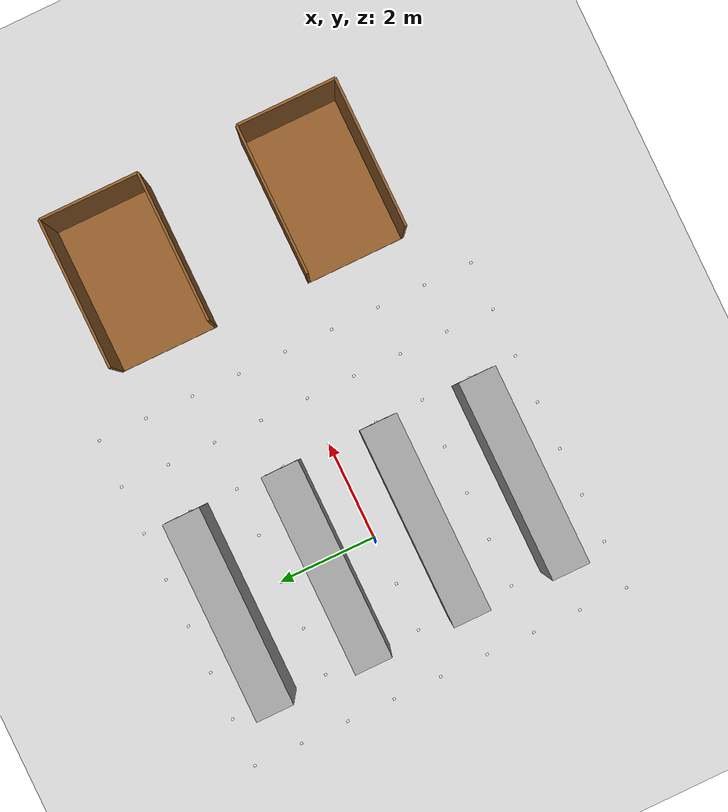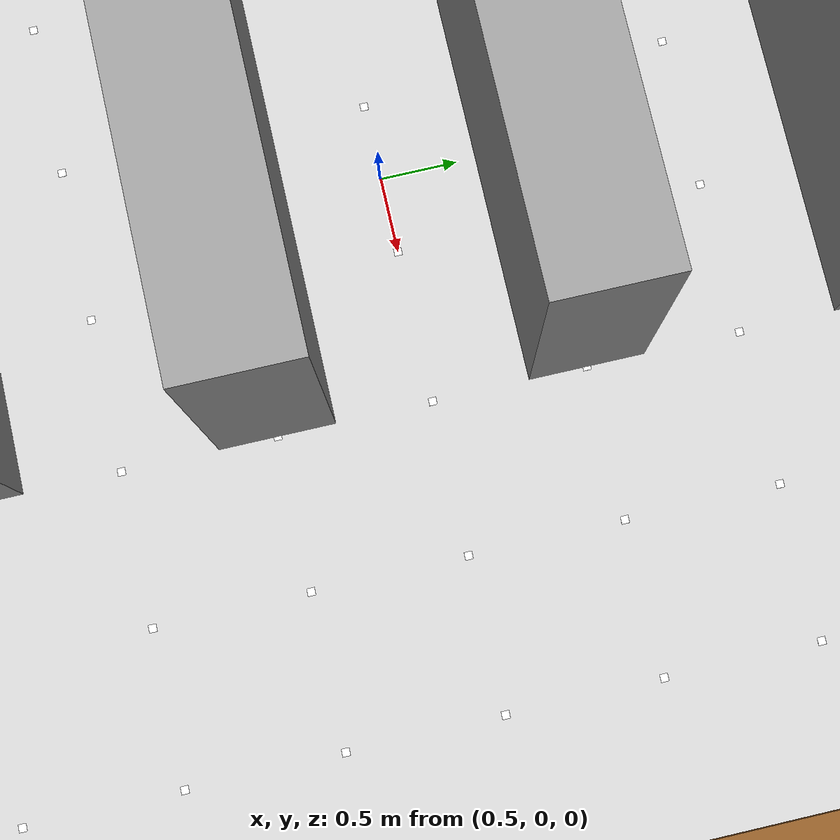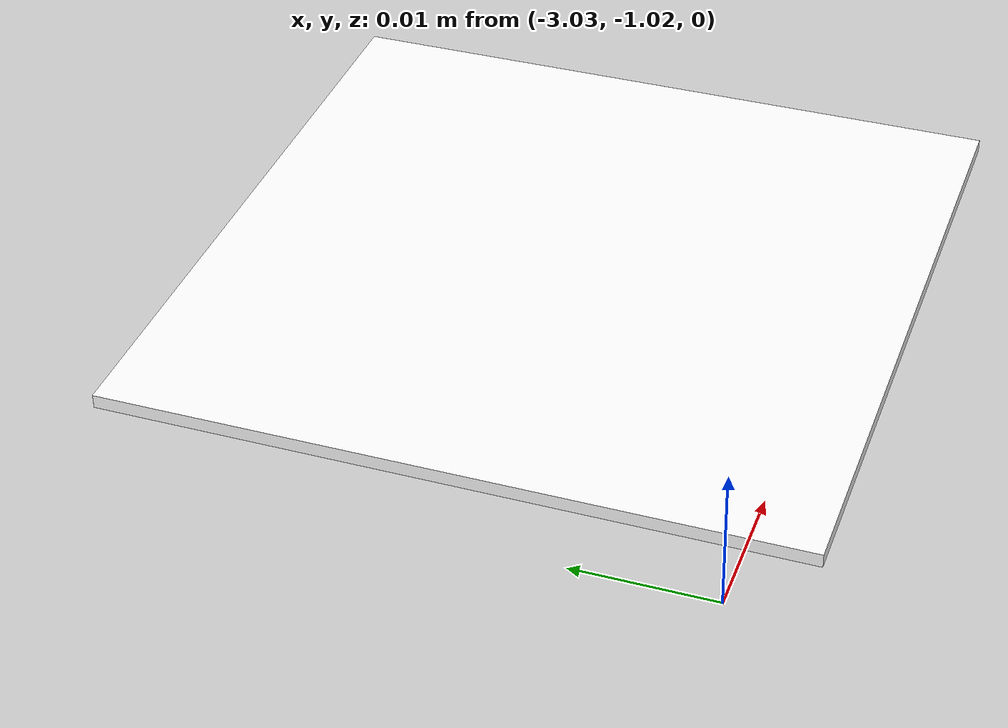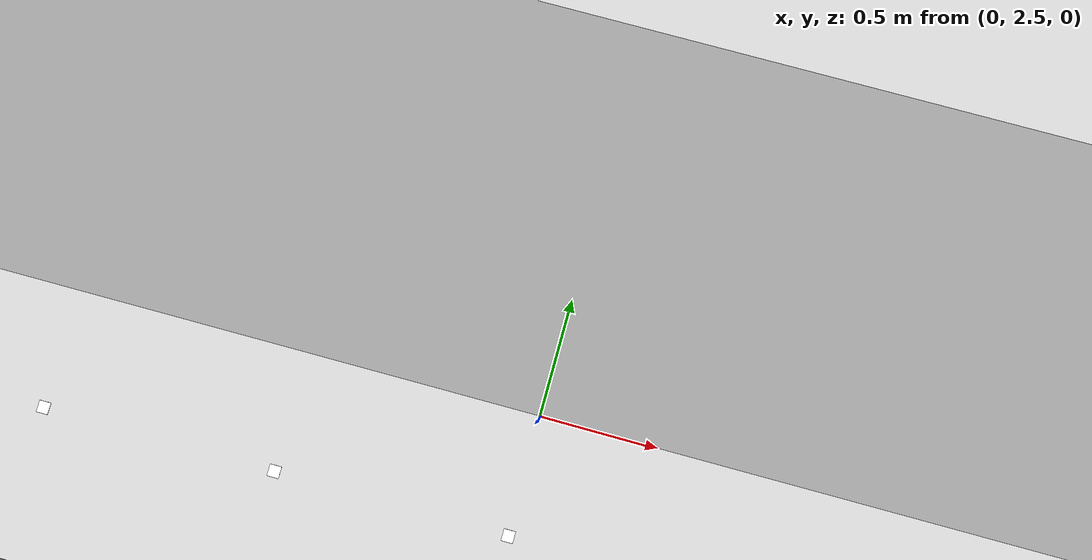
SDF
<?xml version="1.0" ?>
<sdf version="1.9">
  <world name="warehouse">
    <plugin filename="gz-sim-physics-system" name="gz::sim::systems::Physics" />
    <plugin filename="gz-sim-user-commands-system" name="gz::sim::systems::UserCommands" />
    <plugin filename="gz-sim-scene-broadcaster-system" name="gz::sim::systems::SceneBroadcaster" />
    <plugin filename="gz-sim-sensors-system" name="gz::sim::systems::Sensors">
      <render_engine>ogre2</render_engine>
    </plugin>
    <plugin filename="gz-sim-imu-system" name="gz::sim::systems::Imu" />

    <light type="directional" name="sun">
      <cast_shadows>true</cast_shadows>
      <pose>0 0 10 0 0 0</pose>
      <diffuse>0.8 0.8 0.8 1</diffuse>
      <specular>0.2 0.2 0.2 1</specular>
      <direction>-0.5 0.1 -0.9</direction>
    </light>

    <model name="ground_plane">
      <static>true</static>
      <link name="link">
        <collision name="collision">
          <geometry>
            <plane>
              <normal>0 0 1</normal>
              <size>100 100</size>
            </plane>
          </geometry>
        </collision>
        <visual name="visual">
          <geometry>
            <plane>
              <normal>0 0 1</normal>
              <size>100 100</size>
            </plane>
          </geometry>
          <material>
            <ambient>0.8 0.8 0.8 1</ambient>
            <diffuse>0.8 0.8 0.8 1</diffuse>
            <specular>0.8 0.8 0.8 1</specular>
          </material>
        </visual>
      </link>
    </model>

    <model name="obstacle_1">
      <static>true</static>
      <pose>0 -3 1 0 0 0</pose>
      <link name="link">
        <collision name="collision">
          <geometry>
            <box>
              <size>4 0.75 2</size>
            </box>
          </geometry>
        </collision>
        <visual name="visual">
          <geometry>
            <box>
              <size>4 0.75 2</size>
            </box>
          </geometry>
          <material>
            <ambient>0.6 0.6 0.6 1</ambient>
            <diffuse>0.6 0.6 0.6 1</diffuse>
            <specular>0.6 0.6 0.6 1</specular>
          </material>
        </visual>
      </link>
    </model>

    <model name="obstacle_2">
      <static>true</static>
      <pose>0 1 1 0 0 0</pose>
      <link name="link">
        <collision name="collision">
          <geometry>
            <box>
              <size>4 0.75 2</size>
            </box>
          </geometry>
        </collision>
        <visual name="visual">
          <geometry>
            <box>
              <size>4 0.75 2</size>
            </box>
          </geometry>
          <material>
            <ambient>0.6 0.6 0.6 1</ambient>
            <diffuse>0.6 0.6 0.6 1</diffuse>
            <specular>0.6 0.6 0.6 1</specular>
          </material>
        </visual>
      </link>
    </model>

    <model name="obstacle_3">
      <static>true</static>
      <pose>0 -1 1 0 0 0</pose>
      <link name="link">
        <collision name="collision">
          <geometry>
            <box>
              <size>4 0.75 2</size>
            </box>
          </geometry>
        </collision>
        <visual name="visual">
          <geometry>
            <box>
              <size>4 0.75 2</size>
            </box>
          </geometry>
          <material>
            <ambient>0.6 0.6 0.6 1</ambient>
            <diffuse>0.6 0.6 0.6 1</diffuse>
            <specular>0.6 0.6 0.6 1</specular>
          </material>
        </visual>
      </link>
    </model>

    <model name="obstacle_4">
      <static>true</static>
      <pose>0 3 1 0 0 0</pose>
      <link name="link">
        <collision name="collision">
          <geometry>
            <box>
              <size>4 0.75 2</size>
            </box>
          </geometry>
        </collision>
        <visual name="visual">
          <geometry>
            <box>
              <size>4 0.75 2</size>
            </box>
          </geometry>
          <material>
            <ambient>0.6 0.6 0.6 1</ambient>
            <diffuse>0.6 0.6 0.6 1</diffuse>
            <specular>0.6 0.6 0.6 1</specular>
          </material>
        </visual>
      </link>
    </model>
    <model name="box_1">
      <static>true</static>
      <pose>6.5 -2 0 0 0 3.14159</pose>
      <link name="link">
        <collision name="base_collision">
          <pose>0 0 0.025 0 0 0</pose>
          <geometry>
            <box>
              <size>3 2 0.05</size>
            </box>
          </geometry>
        </collision>
        <visual name="base_visual">
          <pose>0 0 0.025 0 0 0</pose>
          <geometry>
            <box>
              <size>3 2 0.05</size>
            </box>
          </geometry>
          <material>
            <ambient>0.55 0.35 0.15 1</ambient>
            <diffuse>0.55 0.35 0.15 1</diffuse>
            <specular>0.2 0.2 0.2 1</specular>
          </material>
        </visual>

        <collision name="long_side_a_collision">
          <pose>0 -1 1 0 0 0</pose>
          <geometry>
            <box>
              <size>3 0.05 2</size>
            </box>
          </geometry>
        </collision>
        <visual name="long_side_a_visual">
          <pose>0 -1 1 0 0 0</pose>
          <geometry>
            <box>
              <size>3 0.05 2</size>
            </box>
          </geometry>
          <material>
            <ambient>0.55 0.35 0.15 1</ambient>
            <diffuse>0.55 0.35 0.15 1</diffuse>
            <specular>0.2 0.2 0.2 1</specular>
          </material>
        </visual>

        <collision name="long_side_b_collision">
          <pose>0 1 1 0 0 0</pose>
          <geometry>
            <box>
              <size>3 0.05 2</size>
            </box>
          </geometry>
        </collision>
        <visual name="long_side_b_visual">
          <pose>0 1 1 0 0 0</pose>
          <geometry>
            <box>
              <size>3 0.05 2</size>
            </box>
          </geometry>
          <material>
            <ambient>0.55 0.35 0.15 1</ambient>
            <diffuse>0.55 0.35 0.15 1</diffuse>
            <specular>0.2 0.2 0.2 1</specular>
          </material>
        </visual>

        <collision name="short_side_collision">
          <pose>-1.5 0 1 0 0 0</pose>
          <geometry>
            <box>
              <size>0.05 2 2</size>
            </box>
          </geometry>
        </collision>
        <visual name="short_side_visual">
          <pose>-1.5 0 1 0 0 0</pose>
          <geometry>
            <box>
              <size>0.05 2 2</size>
            </box>
          </geometry>
          <material>
            <ambient>0.55 0.35 0.15 1</ambient>
            <diffuse>0.55 0.35 0.15 1</diffuse>
            <specular>0.2 0.2 0.2 1</specular>
          </material>
        </visual>
      </link>
    </model>

    <model name="box_2">
      <static>true</static>
      <pose>6.5 2 0 0 0 3.14159</pose>
      <link name="link">
        <collision name="base_collision">
          <pose>0 0 0.025 0 0 0</pose>
          <geometry>
            <box>
              <size>3 2 0.05</size>
            </box>
          </geometry>
        </collision>
        <visual name="base_visual">
          <pose>0 0 0.025 0 0 0</pose>
          <geometry>
            <box>
              <size>3 2 0.05</size>
            </box>
          </geometry>
          <material>
            <ambient>0.55 0.35 0.15 1</ambient>
            <diffuse>0.55 0.35 0.15 1</diffuse>
            <specular>0.2 0.2 0.2 1</specular>
          </material>
        </visual>

        <collision name="long_side_a_collision">
          <pose>0 -1 1 0 0 0</pose>
          <geometry>
            <box>
              <size>3 0.05 2</size>
            </box>
          </geometry>
        </collision>
        <visual name="long_side_a_visual">
          <pose>0 -1 1 0 0 0</pose>
          <geometry>
            <box>
              <size>3 0.05 2</size>
            </box>
          </geometry>
          <material>
            <ambient>0.55 0.35 0.15 1</ambient>
            <diffuse>0.55 0.35 0.15 1</diffuse>
            <specular>0.2 0.2 0.2 1</specular>
          </material>
        </visual>

        <collision name="long_side_b_collision">
          <pose>0 1 1 0 0 0</pose>
          <geometry>
            <box>
              <size>3 0.05 2</size>
            </box>
          </geometry>
        </collision>
        <visual name="long_side_b_visual">
          <pose>0 1 1 0 0 0</pose>
          <geometry>
            <box>
              <size>3 0.05 2</size>
            </box>
          </geometry>
          <material>
            <ambient>0.55 0.35 0.15 1</ambient>
            <diffuse>0.55 0.35 0.15 1</diffuse>
            <specular>0.2 0.2 0.2 1</specular>
          </material>
        </visual>

        <collision name="short_side_collision">
          <pose>-1.5 0 1 0 0 0</pose>
          <geometry>
            <box>
              <size>0.05 2 2</size>
            </box>
          </geometry>
        </collision>
        <visual name="short_side_visual">
          <pose>-1.5 0 1 0 0 0</pose>
          <geometry>
            <box>
              <size>0.05 2 2</size>
            </box>
          </geometry>
          <material>
            <ambient>0.55 0.35 0.15 1</ambient>
            <diffuse>0.55 0.35 0.15 1</diffuse>
            <specular>0.2 0.2 0.2 1</specular>
          </material>
        </visual>
      </link>
    </model>
    <!-- BEGIN AUTO-GENERATED APRILTAG GRID: generated by generate_apriltag_grid.py, do not edit by hand -->
    <!-- 72 floor AprilTags on the 8x9 path-planner grid -->
    <model name="floor_tag_0">
      <static>true</static>
      <pose>-3.0000 4.0000 0.0006 0 0 0.0</pose>
      <link name="link">
        <visual name="visual">
          <geometry>
            <box>
              <size>0.05 0.05 0.001</size>
            </box>
          </geometry>
          <material>
            <ambient>1 1 1 1</ambient>
            <diffuse>1 1 1 1</diffuse>
            <specular>0 0 0 1</specular>
            <pbr>
              <metal>
                <albedo_map>model://apriltag/materials/textures/tag36h11-0.png</albedo_map>
              </metal>
            </pbr>
          </material>
        </visual>
        <collision name="collision">
          <geometry>
            <box>
              <size>0.05 0.05 0.001</size>
            </box>
          </geometry>
        </collision>
      </link>
    </model>
    <model name="floor_tag_1">
      <static>true</static>
      <pose>-2.0000 4.0000 0.0006 0 0 0.0</pose>
      <link name="link">
        <visual name="visual">
          <geometry>
            <box>
              <size>0.05 0.05 0.001</size>
            </box>
          </geometry>
          <material>
            <ambient>1 1 1 1</ambient>
            <diffuse>1 1 1 1</diffuse>
            <specular>0 0 0 1</specular>
            <pbr>
              <metal>
                <albedo_map>model://apriltag/materials/textures/tag36h11-1.png</albedo_map>
              </metal>
            </pbr>
          </material>
        </visual>
        <collision name="collision">
          <geometry>
            <box>
              <size>0.05 0.05 0.001</size>
            </box>
          </geometry>
        </collision>
      </link>
    </model>
    <model name="floor_tag_2">
      <static>true</static>
      <pose>-1.0000 4.0000 0.0006 0 0 0.0</pose>
      <link name="link">
        <visual name="visual">
          <geometry>
            <box>
              <size>0.05 0.05 0.001</size>
            </box>
          </geometry>
          <material>
            <ambient>1 1 1 1</ambient>
            <diffuse>1 1 1 1</diffuse>
            <specular>0 0 0 1</specular>
            <pbr>
              <metal>
                <albedo_map>model://apriltag/materials/textures/tag36h11-2.png</albedo_map>
              </metal>
            </pbr>
          </material>
        </visual>
        <collision name="collision">
          <geometry>
            <box>
              <size>0.05 0.05 0.001</size>
            </box>
          </geometry>
        </collision>
      </link>
    </model>
    <model name="floor_tag_3">
      <static>true</static>
      <pose>0.0000 4.0000 0.0006 0 0 0.0</pose>
      <link name="link">
        <visual name="visual">
          <geometry>
            <box>
              <size>0.05 0.05 0.001</size>
            </box>
          </geometry>
          <material>
            <ambient>1 1 1 1</ambient>
            <diffuse>1 1 1 1</diffuse>
            <specular>0 0 0 1</specular>
            <pbr>
              <metal>
                <albedo_map>model://apriltag/materials/textures/tag36h11-3.png</albedo_map>
              </metal>
            </pbr>
          </material>
        </visual>
        <collision name="collision">
          <geometry>
            <box>
              <size>0.05 0.05 0.001</size>
            </box>
          </geometry>
        </collision>
      </link>
    </model>
    <model name="floor_tag_4">
      <static>true</static>
      <pose>1.0000 4.0000 0.0006 0 0 0.0</pose>
      <link name="link">
        <visual name="visual">
          <geometry>
            <box>
              <size>0.05 0.05 0.001</size>
            </box>
          </geometry>
          <material>
            <ambient>1 1 1 1</ambient>
            <diffuse>1 1 1 1</diffuse>
            <specular>0 0 0 1</specular>
            <pbr>
              <metal>
                <albedo_map>model://apriltag/materials/textures/tag36h11-4.png</albedo_map>
              </metal>
            </pbr>
          </material>
        </visual>
        <collision name="collision">
          <geometry>
            <box>
              <size>0.05 0.05 0.001</size>
            </box>
          </geometry>
        </collision>
      </link>
    </model>
    <model name="floor_tag_5">
      <static>true</static>
      <pose>2.0000 4.0000 0.0006 0 0 0.0</pose>
      <link name="link">
        <visual name="visual">
          <geometry>
            <box>
              <size>0.05 0.05 0.001</size>
            </box>
          </geometry>
          <material>
            <ambient>1 1 1 1</ambient>
            <diffuse>1 1 1 1</diffuse>
            <specular>0 0 0 1</specular>
            <pbr>
              <metal>
                <albedo_map>model://apriltag/materials/textures/tag36h11-5.png</albedo_map>
              </metal>
            </pbr>
          </material>
        </visual>
        <collision name="collision">
          <geometry>
            <box>
              <size>0.05 0.05 0.001</size>
            </box>
          </geometry>
        </collision>
      </link>
    </model>
    <model name="floor_tag_6">
      <static>true</static>
      <pose>3.0000 4.0000 0.0006 0 0 0.0</pose>
      <link name="link">
        <visual name="visual">
          <geometry>
            <box>
              <size>0.05 0.05 0.001</size>
            </box>
          </geometry>
          <material>
            <ambient>1 1 1 1</ambient>
            <diffuse>1 1 1 1</diffuse>
            <specular>0 0 0 1</specular>
            <pbr>
              <metal>
                <albedo_map>model://apriltag/materials/textures/tag36h11-6.png</albedo_map>
              </metal>
            </pbr>
          </material>
        </visual>
        <collision name="collision">
          <geometry>
            <box>
              <size>0.05 0.05 0.001</size>
            </box>
          </geometry>
        </collision>
      </link>
    </model>
    <model name="floor_tag_7">
      <static>true</static>
      <pose>4.0000 4.0000 0.0006 0 0 0.0</pose>
      <link name="link">
        <visual name="visual">
          <geometry>
            <box>
              <size>0.05 0.05 0.001</size>
            </box>
          </geometry>
          <material>
            <ambient>1 1 1 1</ambient>
            <diffuse>1 1 1 1</diffuse>
            <specular>0 0 0 1</specular>
            <pbr>
              <metal>
                <albedo_map>model://apriltag/materials/textures/tag36h11-7.png</albedo_map>
              </metal>
            </pbr>
          </material>
        </visual>
        <collision name="collision">
          <geometry>
            <box>
              <size>0.05 0.05 0.001</size>
            </box>
          </geometry>
        </collision>
      </link>
    </model>
    <model name="floor_tag_8">
      <static>true</static>
      <pose>-3.0000 3.0000 0.0006 0 0 0.0</pose>
      <link name="link">
        <visual name="visual">
          <geometry>
            <box>
              <size>0.05 0.05 0.001</size>
            </box>
          </geometry>
          <material>
            <ambient>1 1 1 1</ambient>
            <diffuse>1 1 1 1</diffuse>
            <specular>0 0 0 1</specular>
            <pbr>
              <metal>
                <albedo_map>model://apriltag/materials/textures/tag36h11-8.png</albedo_map>
              </metal>
            </pbr>
          </material>
        </visual>
        <collision name="collision">
          <geometry>
            <box>
              <size>0.05 0.05 0.001</size>
            </box>
          </geometry>
        </collision>
      </link>
    </model>
    <model name="floor_tag_9">
      <static>true</static>
      <pose>-2.0000 3.0000 0.0006 0 0 0.0</pose>
      <link name="link">
        <visual name="visual">
          <geometry>
            <box>
              <size>0.05 0.05 0.001</size>
            </box>
          </geometry>
          <material>
            <ambient>1 1 1 1</ambient>
            <diffuse>1 1 1 1</diffuse>
            <specular>0 0 0 1</specular>
            <pbr>
              <metal>
                <albedo_map>model://apriltag/materials/textures/tag36h11-9.png</albedo_map>
              </metal>
            </pbr>
          </material>
        </visual>
        <collision name="collision">
          <geometry>
            <box>
              <size>0.05 0.05 0.001</size>
            </box>
          </geometry>
        </collision>
      </link>
    </model>
    <model name="floor_tag_10">
      <static>true</static>
      <pose>-1.0000 3.0000 0.0006 0 0 0.0</pose>
      <link name="link">
        <visual name="visual">
          <geometry>
            <box>
              <size>0.05 0.05 0.001</size>
            </box>
          </geometry>
          <material>
            <ambient>1 1 1 1</ambient>
            <diffuse>1 1 1 1</diffuse>
            <specular>0 0 0 1</specular>
            <pbr>
              <metal>
                <albedo_map>model://apriltag/materials/textures/tag36h11-10.png</albedo_map>
              </metal>
            </pbr>
          </material>
        </visual>
        <collision name="collision">
          <geometry>
            <box>
              <size>0.05 0.05 0.001</size>
            </box>
          </geometry>
        </collision>
      </link>
    </model>
    <model name="floor_tag_11">
      <static>true</static>
      <pose>0.0000 3.0000 0.0006 0 0 0.0</pose>
      <link name="link">
        <visual name="visual">
          <geometry>
            <box>
              <size>0.05 0.05 0.001</size>
            </box>
          </geometry>
          <material>
            <ambient>1 1 1 1</ambient>
            <diffuse>1 1 1 1</diffuse>
            <specular>0 0 0 1</specular>
            <pbr>
              <metal>
                <albedo_map>model://apriltag/materials/textures/tag36h11-11.png</albedo_map>
              </metal>
            </pbr>
          </material>
        </visual>
        <collision name="collision">
          <geometry>
            <box>
              <size>0.05 0.05 0.001</size>
            </box>
          </geometry>
        </collision>
      </link>
    </model>
    <model name="floor_tag_12">
      <static>true</static>
      <pose>1.0000 3.0000 0.0006 0 0 0.0</pose>
      <link name="link">
        <visual name="visual">
          <geometry>
            <box>
              <size>0.05 0.05 0.001</size>
            </box>
          </geometry>
          <material>
            <ambient>1 1 1 1</ambient>
            <diffuse>1 1 1 1</diffuse>
            <specular>0 0 0 1</specular>
            <pbr>
              <metal>
                <albedo_map>model://apriltag/materials/textures/tag36h11-12.png</albedo_map>
              </metal>
            </pbr>
          </material>
        </visual>
        <collision name="collision">
          <geometry>
            <box>
              <size>0.05 0.05 0.001</size>
            </box>
          </geometry>
        </collision>
      </link>
    </model>
    <model name="floor_tag_13">
      <static>true</static>
      <pose>2.0000 3.0000 0.0006 0 0 0.0</pose>
      <link name="link">
        <visual name="visual">
          <geometry>
            <box>
              <size>0.05 0.05 0.001</size>
            </box>
          </geometry>
          <material>
            <ambient>1 1 1 1</ambient>
            <diffuse>1 1 1 1</diffuse>
            <specular>0 0 0 1</specular>
            <pbr>
              <metal>
                <albedo_map>model://apriltag/materials/textures/tag36h11-13.png</albedo_map>
              </metal>
            </pbr>
          </material>
        </visual>
        <collision name="collision">
          <geometry>
            <box>
              <size>0.05 0.05 0.001</size>
            </box>
          </geometry>
        </collision>
      </link>
    </model>
    <model name="floor_tag_14">
      <static>true</static>
      <pose>3.0000 3.0000 0.0006 0 0 0.0</pose>
      <link name="link">
        <visual name="visual">
          <geometry>
            <box>
              <size>0.05 0.05 0.001</size>
            </box>
          </geometry>
          <material>
            <ambient>1 1 1 1</ambient>
            <diffuse>1 1 1 1</diffuse>
            <specular>0 0 0 1</specular>
            <pbr>
              <metal>
                <albedo_map>model://apriltag/materials/textures/tag36h11-14.png</albedo_map>
              </metal>
            </pbr>
          </material>
        </visual>
        <collision name="collision">
          <geometry>
            <box>
              <size>0.05 0.05 0.001</size>
            </box>
          </geometry>
        </collision>
      </link>
    </model>
    <model name="floor_tag_15">
      <static>true</static>
      <pose>4.0000 3.0000 0.0006 0 0 0.0</pose>
      <link name="link">
        <visual name="visual">
          <geometry>
            <box>
              <size>0.05 0.05 0.001</size>
            </box>
          </geometry>
          <material>
            <ambient>1 1 1 1</ambient>
            <diffuse>1 1 1 1</diffuse>
            <specular>0 0 0 1</specular>
            <pbr>
              <metal>
                <albedo_map>model://apriltag/materials/textures/tag36h11-15.png</albedo_map>
              </metal>
            </pbr>
          </material>
        </visual>
        <collision name="collision">
          <geometry>
            <box>
              <size>0.05 0.05 0.001</size>
            </box>
          </geometry>
        </collision>
      </link>
    </model>
    <model name="floor_tag_16">
      <static>true</static>
      <pose>-3.0000 2.0000 0.0006 0 0 0.0</pose>
      <link name="link">
        <visual name="visual">
          <geometry>
            <box>
              <size>0.05 0.05 0.001</size>
            </box>
          </geometry>
          <material>
            <ambient>1 1 1 1</ambient>
            <diffuse>1 1 1 1</diffuse>
            <specular>0 0 0 1</specular>
            <pbr>
              <metal>
                <albedo_map>model://apriltag/materials/textures/tag36h11-16.png</albedo_map>
              </metal>
            </pbr>
          </material>
        </visual>
        <collision name="collision">
          <geometry>
            <box>
              <size>0.05 0.05 0.001</size>
            </box>
          </geometry>
        </collision>
      </link>
    </model>
    <model name="floor_tag_17">
      <static>true</static>
      <pose>-2.0000 2.0000 0.0006 0 0 0.0</pose>
      <link name="link">
        <visual name="visual">
          <geometry>
            <box>
              <size>0.05 0.05 0.001</size>
            </box>
          </geometry>
          <material>
            <ambient>1 1 1 1</ambient>
            <diffuse>1 1 1 1</diffuse>
            <specular>0 0 0 1</specular>
            <pbr>
              <metal>
                <albedo_map>model://apriltag/materials/textures/tag36h11-17.png</albedo_map>
              </metal>
            </pbr>
          </material>
        </visual>
        <collision name="collision">
          <geometry>
            <box>
              <size>0.05 0.05 0.001</size>
            </box>
          </geometry>
        </collision>
      </link>
    </model>
    <model name="floor_tag_18">
      <static>true</static>
      <pose>-1.0000 2.0000 0.0006 0 0 0.0</pose>
      <link name="link">
        <visual name="visual">
          <geometry>
            <box>
              <size>0.05 0.05 0.001</size>
            </box>
          </geometry>
          <material>
            <ambient>1 1 1 1</ambient>
            <diffuse>1 1 1 1</diffuse>
            <specular>0 0 0 1</specular>
            <pbr>
              <metal>
                <albedo_map>model://apriltag/materials/textures/tag36h11-18.png</albedo_map>
              </metal>
            </pbr>
          </material>
        </visual>
        <collision name="collision">
          <geometry>
            <box>
              <size>0.05 0.05 0.001</size>
            </box>
          </geometry>
        </collision>
      </link>
    </model>
    <model name="floor_tag_19">
      <static>true</static>
      <pose>0.0000 2.0000 0.0006 0 0 0.0</pose>
      <link name="link">
        <visual name="visual">
          <geometry>
            <box>
              <size>0.05 0.05 0.001</size>
            </box>
          </geometry>
          <material>
            <ambient>1 1 1 1</ambient>
            <diffuse>1 1 1 1</diffuse>
            <specular>0 0 0 1</specular>
            <pbr>
              <metal>
                <albedo_map>model://apriltag/materials/textures/tag36h11-19.png</albedo_map>
              </metal>
            </pbr>
          </material>
        </visual>
        <collision name="collision">
          <geometry>
            <box>
              <size>0.05 0.05 0.001</size>
            </box>
          </geometry>
        </collision>
      </link>
    </model>
    <model name="floor_tag_20">
      <static>true</static>
      <pose>1.0000 2.0000 0.0006 0 0 0.0</pose>
      <link name="link">
        <visual name="visual">
          <geometry>
            <box>
              <size>0.05 0.05 0.001</size>
            </box>
          </geometry>
          <material>
            <ambient>1 1 1 1</ambient>
            <diffuse>1 1 1 1</diffuse>
            <specular>0 0 0 1</specular>
            <pbr>
              <metal>
                <albedo_map>model://apriltag/materials/textures/tag36h11-20.png</albedo_map>
              </metal>
            </pbr>
          </material>
        </visual>
        <collision name="collision">
          <geometry>
            <box>
              <size>0.05 0.05 0.001</size>
            </box>
          </geometry>
        </collision>
      </link>
    </model>
    <model name="floor_tag_21">
      <static>true</static>
      <pose>2.0000 2.0000 0.0006 0 0 0.0</pose>
      <link name="link">
        <visual name="visual">
          <geometry>
            <box>
              <size>0.05 0.05 0.001</size>
            </box>
          </geometry>
          <material>
            <ambient>1 1 1 1</ambient>
            <diffuse>1 1 1 1</diffuse>
            <specular>0 0 0 1</specular>
            <pbr>
              <metal>
                <albedo_map>model://apriltag/materials/textures/tag36h11-21.png</albedo_map>
              </metal>
            </pbr>
          </material>
        </visual>
        <collision name="collision">
          <geometry>
            <box>
              <size>0.05 0.05 0.001</size>
            </box>
          </geometry>
        </collision>
      </link>
    </model>
    <model name="floor_tag_22">
      <static>true</static>
      <pose>3.0000 2.0000 0.0006 0 0 0.0</pose>
      <link name="link">
        <visual name="visual">
          <geometry>
            <box>
              <size>0.05 0.05 0.001</size>
            </box>
          </geometry>
          <material>
            <ambient>1 1 1 1</ambient>
            <diffuse>1 1 1 1</diffuse>
            <specular>0 0 0 1</specular>
            <pbr>
              <metal>
                <albedo_map>model://apriltag/materials/textures/tag36h11-22.png</albedo_map>
              </metal>
            </pbr>
          </material>
        </visual>
        <collision name="collision">
          <geometry>
            <box>
              <size>0.05 0.05 0.001</size>
            </box>
          </geometry>
        </collision>
      </link>
    </model>
    <model name="floor_tag_23">
      <static>true</static>
      <pose>4.0000 2.0000 0.0006 0 0 0.0</pose>
      <link name="link">
        <visual name="visual">
          <geometry>
            <box>
              <size>0.05 0.05 0.001</size>
            </box>
          </geometry>
          <material>
            <ambient>1 1 1 1</ambient>
            <diffuse>1 1 1 1</diffuse>
            <specular>0 0 0 1</specular>
            <pbr>
              <metal>
                <albedo_map>model://apriltag/materials/textures/tag36h11-23.png</albedo_map>
              </metal>
            </pbr>
          </material>
        </visual>
        <collision name="collision">
          <geometry>
            <box>
              <size>0.05 0.05 0.001</size>
            </box>
          </geometry>
        </collision>
      </link>
    </model>
    <model name="floor_tag_24">
      <static>true</static>
      <pose>-3.0000 1.0000 0.0006 0 0 0.0</pose>
      <link name="link">
        <visual name="visual">
          <geometry>
            <box>
              <size>0.05 0.05 0.001</size>
            </box>
          </geometry>
          <material>
            <ambient>1 1 1 1</ambient>
            <diffuse>1 1 1 1</diffuse>
            <specular>0 0 0 1</specular>
            <pbr>
              <metal>
                <albedo_map>model://apriltag/materials/textures/tag36h11-24.png</albedo_map>
              </metal>
            </pbr>
          </material>
        </visual>
        <collision name="collision">
          <geometry>
            <box>
              <size>0.05 0.05 0.001</size>
            </box>
          </geometry>
        </collision>
      </link>
    </model>
    <model name="floor_tag_25">
      <static>true</static>
      <pose>-2.0000 1.0000 0.0006 0 0 0.0</pose>
      <link name="link">
        <visual name="visual">
          <geometry>
            <box>
              <size>0.05 0.05 0.001</size>
            </box>
          </geometry>
          <material>
            <ambient>1 1 1 1</ambient>
            <diffuse>1 1 1 1</diffuse>
            <specular>0 0 0 1</specular>
            <pbr>
              <metal>
                <albedo_map>model://apriltag/materials/textures/tag36h11-25.png</albedo_map>
              </metal>
            </pbr>
          </material>
        </visual>
        <collision name="collision">
          <geometry>
            <box>
              <size>0.05 0.05 0.001</size>
            </box>
          </geometry>
        </collision>
      </link>
    </model>
    <model name="floor_tag_26">
      <static>true</static>
      <pose>-1.0000 1.0000 0.0006 0 0 0.0</pose>
      <link name="link">
        <visual name="visual">
          <geometry>
            <box>
              <size>0.05 0.05 0.001</size>
            </box>
          </geometry>
          <material>
            <ambient>1 1 1 1</ambient>
            <diffuse>1 1 1 1</diffuse>
            <specular>0 0 0 1</specular>
            <pbr>
              <metal>
                <albedo_map>model://apriltag/materials/textures/tag36h11-26.png</albedo_map>
              </metal>
            </pbr>
          </material>
        </visual>
        <collision name="collision">
          <geometry>
            <box>
              <size>0.05 0.05 0.001</size>
            </box>
          </geometry>
        </collision>
      </link>
    </model>
    <model name="floor_tag_27">
      <static>true</static>
      <pose>0.0000 1.0000 0.0006 0 0 0.0</pose>
      <link name="link">
        <visual name="visual">
          <geometry>
            <box>
              <size>0.05 0.05 0.001</size>
            </box>
          </geometry>
          <material>
            <ambient>1 1 1 1</ambient>
            <diffuse>1 1 1 1</diffuse>
            <specular>0 0 0 1</specular>
            <pbr>
              <metal>
                <albedo_map>model://apriltag/materials/textures/tag36h11-27.png</albedo_map>
              </metal>
            </pbr>
          </material>
        </visual>
        <collision name="collision">
          <geometry>
            <box>
              <size>0.05 0.05 0.001</size>
            </box>
          </geometry>
        </collision>
      </link>
    </model>
    <model name="floor_tag_28">
      <static>true</static>
      <pose>1.0000 1.0000 0.0006 0 0 0.0</pose>
      <link name="link">
        <visual name="visual">
          <geometry>
            <box>
              <size>0.05 0.05 0.001</size>
            </box>
          </geometry>
          <material>
            <ambient>1 1 1 1</ambient>
            <diffuse>1 1 1 1</diffuse>
            <specular>0 0 0 1</specular>
            <pbr>
              <metal>
                <albedo_map>model://apriltag/materials/textures/tag36h11-28.png</albedo_map>
              </metal>
            </pbr>
          </material>
        </visual>
        <collision name="collision">
          <geometry>
            <box>
              <size>0.05 0.05 0.001</size>
            </box>
          </geometry>
        </collision>
      </link>
    </model>
    <model name="floor_tag_29">
      <static>true</static>
      <pose>2.0000 1.0000 0.0006 0 0 0.0</pose>
      <link name="link">
        <visual name="visual">
          <geometry>
            <box>
              <size>0.05 0.05 0.001</size>
            </box>
          </geometry>
          <material>
            <ambient>1 1 1 1</ambient>
            <diffuse>1 1 1 1</diffuse>
            <specular>0 0 0 1</specular>
            <pbr>
              <metal>
                <albedo_map>model://apriltag/materials/textures/tag36h11-29.png</albedo_map>
              </metal>
            </pbr>
          </material>
        </visual>
        <collision name="collision">
          <geometry>
            <box>
              <size>0.05 0.05 0.001</size>
            </box>
          </geometry>
        </collision>
      </link>
    </model>
    <model name="floor_tag_30">
      <static>true</static>
      <pose>3.0000 1.0000 0.0006 0 0 0.0</pose>
      <link name="link">
        <visual name="visual">
          <geometry>
            <box>
              <size>0.05 0.05 0.001</size>
            </box>
          </geometry>
          <material>
            <ambient>1 1 1 1</ambient>
            <diffuse>1 1 1 1</diffuse>
            <specular>0 0 0 1</specular>
            <pbr>
              <metal>
                <albedo_map>model://apriltag/materials/textures/tag36h11-30.png</albedo_map>
              </metal>
            </pbr>
          </material>
        </visual>
        <collision name="collision">
          <geometry>
            <box>
              <size>0.05 0.05 0.001</size>
            </box>
          </geometry>
        </collision>
      </link>
    </model>
    <model name="floor_tag_31">
      <static>true</static>
      <pose>4.0000 1.0000 0.0006 0 0 0.0</pose>
      <link name="link">
        <visual name="visual">
          <geometry>
            <box>
              <size>0.05 0.05 0.001</size>
            </box>
          </geometry>
          <material>
            <ambient>1 1 1 1</ambient>
            <diffuse>1 1 1 1</diffuse>
            <specular>0 0 0 1</specular>
            <pbr>
              <metal>
                <albedo_map>model://apriltag/materials/textures/tag36h11-31.png</albedo_map>
              </metal>
            </pbr>
          </material>
        </visual>
        <collision name="collision">
          <geometry>
            <box>
              <size>0.05 0.05 0.001</size>
            </box>
          </geometry>
        </collision>
      </link>
    </model>
    <model name="floor_tag_32">
      <static>true</static>
      <pose>-3.0000 0.0000 0.0006 0 0 0.0</pose>
      <link name="link">
        <visual name="visual">
          <geometry>
            <box>
              <size>0.05 0.05 0.001</size>
            </box>
          </geometry>
          <material>
            <ambient>1 1 1 1</ambient>
            <diffuse>1 1 1 1</diffuse>
            <specular>0 0 0 1</specular>
            <pbr>
              <metal>
                <albedo_map>model://apriltag/materials/textures/tag36h11-32.png</albedo_map>
              </metal>
            </pbr>
          </material>
        </visual>
        <collision name="collision">
          <geometry>
            <box>
              <size>0.05 0.05 0.001</size>
            </box>
          </geometry>
        </collision>
      </link>
    </model>
    <model name="floor_tag_33">
      <static>true</static>
      <pose>-2.0000 0.0000 0.0006 0 0 0.0</pose>
      <link name="link">
        <visual name="visual">
          <geometry>
            <box>
              <size>0.05 0.05 0.001</size>
            </box>
          </geometry>
          <material>
            <ambient>1 1 1 1</ambient>
            <diffuse>1 1 1 1</diffuse>
            <specular>0 0 0 1</specular>
            <pbr>
              <metal>
                <albedo_map>model://apriltag/materials/textures/tag36h11-33.png</albedo_map>
              </metal>
            </pbr>
          </material>
        </visual>
        <collision name="collision">
          <geometry>
            <box>
              <size>0.05 0.05 0.001</size>
            </box>
          </geometry>
        </collision>
      </link>
    </model>
    <model name="floor_tag_34">
      <static>true</static>
      <pose>-1.0000 0.0000 0.0006 0 0 0.0</pose>
      <link name="link">
        <visual name="visual">
          <geometry>
            <box>
              <size>0.05 0.05 0.001</size>
            </box>
          </geometry>
          <material>
            <ambient>1 1 1 1</ambient>
            <diffuse>1 1 1 1</diffuse>
            <specular>0 0 0 1</specular>
            <pbr>
              <metal>
                <albedo_map>model://apriltag/materials/textures/tag36h11-34.png</albedo_map>
              </metal>
            </pbr>
          </material>
        </visual>
        <collision name="collision">
          <geometry>
            <box>
              <size>0.05 0.05 0.001</size>
            </box>
          </geometry>
        </collision>
      </link>
    </model>
    <model name="floor_tag_35">
      <static>true</static>
      <pose>0.0000 0.0000 0.0006 0 0 0.0</pose>
      <link name="link">
        <visual name="visual">
          <geometry>
            <box>
              <size>0.05 0.05 0.001</size>
            </box>
          </geometry>
          <material>
            <ambient>1 1 1 1</ambient>
            <diffuse>1 1 1 1</diffuse>
            <specular>0 0 0 1</specular>
            <pbr>
              <metal>
                <albedo_map>model://apriltag/materials/textures/tag36h11-35.png</albedo_map>
              </metal>
            </pbr>
          </material>
        </visual>
        <collision name="collision">
          <geometry>
            <box>
              <size>0.05 0.05 0.001</size>
            </box>
          </geometry>
        </collision>
      </link>
    </model>
    <model name="floor_tag_36">
      <static>true</static>
      <pose>1.0000 0.0000 0.0006 0 0 0.0</pose>
      <link name="link">
        <visual name="visual">
          <geometry>
            <box>
              <size>0.05 0.05 0.001</size>
            </box>
          </geometry>
          <material>
            <ambient>1 1 1 1</ambient>
            <diffuse>1 1 1 1</diffuse>
            <specular>0 0 0 1</specular>
            <pbr>
              <metal>
                <albedo_map>model://apriltag/materials/textures/tag36h11-36.png</albedo_map>
              </metal>
            </pbr>
          </material>
        </visual>
        <collision name="collision">
          <geometry>
            <box>
              <size>0.05 0.05 0.001</size>
            </box>
          </geometry>
        </collision>
      </link>
    </model>
    <model name="floor_tag_37">
      <static>true</static>
      <pose>2.0000 0.0000 0.0006 0 0 0.0</pose>
      <link name="link">
        <visual name="visual">
          <geometry>
            <box>
              <size>0.05 0.05 0.001</size>
            </box>
          </geometry>
          <material>
            <ambient>1 1 1 1</ambient>
            <diffuse>1 1 1 1</diffuse>
            <specular>0 0 0 1</specular>
            <pbr>
              <metal>
                <albedo_map>model://apriltag/materials/textures/tag36h11-37.png</albedo_map>
              </metal>
            </pbr>
          </material>
        </visual>
        <collision name="collision">
          <geometry>
            <box>
              <size>0.05 0.05 0.001</size>
            </box>
          </geometry>
        </collision>
      </link>
    </model>
    <model name="floor_tag_38">
      <static>true</static>
      <pose>3.0000 0.0000 0.0006 0 0 0.0</pose>
      <link name="link">
        <visual name="visual">
          <geometry>
            <box>
              <size>0.05 0.05 0.001</size>
            </box>
          </geometry>
          <material>
            <ambient>1 1 1 1</ambient>
            <diffuse>1 1 1 1</diffuse>
            <specular>0 0 0 1</specular>
            <pbr>
              <metal>
                <albedo_map>model://apriltag/materials/textures/tag36h11-38.png</albedo_map>
              </metal>
            </pbr>
          </material>
        </visual>
        <collision name="collision">
          <geometry>
            <box>
              <size>0.05 0.05 0.001</size>
            </box>
          </geometry>
        </collision>
      </link>
    </model>
    <model name="floor_tag_39">
      <static>true</static>
      <pose>4.0000 0.0000 0.0006 0 0 0.0</pose>
      <link name="link">
        <visual name="visual">
          <geometry>
            <box>
              <size>0.05 0.05 0.001</size>
            </box>
          </geometry>
          <material>
            <ambient>1 1 1 1</ambient>
            <diffuse>1 1 1 1</diffuse>
            <specular>0 0 0 1</specular>
            <pbr>
              <metal>
                <albedo_map>model://apriltag/materials/textures/tag36h11-39.png</albedo_map>
              </metal>
            </pbr>
          </material>
        </visual>
        <collision name="collision">
          <geometry>
            <box>
              <size>0.05 0.05 0.001</size>
            </box>
          </geometry>
        </collision>
      </link>
    </model>
    <model name="floor_tag_40">
      <static>true</static>
      <pose>-3.0000 -1.0000 0.0006 0 0 0.0</pose>
      <link name="link">
        <visual name="visual">
          <geometry>
            <box>
              <size>0.05 0.05 0.001</size>
            </box>
          </geometry>
          <material>
            <ambient>1 1 1 1</ambient>
            <diffuse>1 1 1 1</diffuse>
            <specular>0 0 0 1</specular>
            <pbr>
              <metal>
                <albedo_map>model://apriltag/materials/textures/tag36h11-40.png</albedo_map>
              </metal>
            </pbr>
          </material>
        </visual>
        <collision name="collision">
          <geometry>
            <box>
              <size>0.05 0.05 0.001</size>
            </box>
          </geometry>
        </collision>
      </link>
    </model>
    <model name="floor_tag_41">
      <static>true</static>
      <pose>-2.0000 -1.0000 0.0006 0 0 0.0</pose>
      <link name="link">
        <visual name="visual">
          <geometry>
            <box>
              <size>0.05 0.05 0.001</size>
            </box>
          </geometry>
          <material>
            <ambient>1 1 1 1</ambient>
            <diffuse>1 1 1 1</diffuse>
            <specular>0 0 0 1</specular>
            <pbr>
              <metal>
                <albedo_map>model://apriltag/materials/textures/tag36h11-41.png</albedo_map>
              </metal>
            </pbr>
          </material>
        </visual>
        <collision name="collision">
          <geometry>
            <box>
              <size>0.05 0.05 0.001</size>
            </box>
          </geometry>
        </collision>
      </link>
    </model>
    <model name="floor_tag_42">
      <static>true</static>
      <pose>-1.0000 -1.0000 0.0006 0 0 0.0</pose>
      <link name="link">
        <visual name="visual">
          <geometry>
            <box>
              <size>0.05 0.05 0.001</size>
            </box>
          </geometry>
          <material>
            <ambient>1 1 1 1</ambient>
            <diffuse>1 1 1 1</diffuse>
            <specular>0 0 0 1</specular>
            <pbr>
              <metal>
                <albedo_map>model://apriltag/materials/textures/tag36h11-42.png</albedo_map>
              </metal>
            </pbr>
          </material>
        </visual>
        <collision name="collision">
          <geometry>
            <box>
              <size>0.05 0.05 0.001</size>
            </box>
          </geometry>
        </collision>
      </link>
    </model>
    <model name="floor_tag_43">
      <static>true</static>
      <pose>0.0000 -1.0000 0.0006 0 0 0.0</pose>
      <link name="link">
        <visual name="visual">
          <geometry>
            <box>
              <size>0.05 0.05 0.001</size>
            </box>
          </geometry>
          <material>
            <ambient>1 1 1 1</ambient>
            <diffuse>1 1 1 1</diffuse>
            <specular>0 0 0 1</specular>
            <pbr>
              <metal>
                <albedo_map>model://apriltag/materials/textures/tag36h11-43.png</albedo_map>
              </metal>
            </pbr>
          </material>
        </visual>
        <collision name="collision">
          <geometry>
            <box>
              <size>0.05 0.05 0.001</size>
            </box>
          </geometry>
        </collision>
      </link>
    </model>
    <model name="floor_tag_44">
      <static>true</static>
      <pose>1.0000 -1.0000 0.0006 0 0 0.0</pose>
      <link name="link">
        <visual name="visual">
          <geometry>
            <box>
              <size>0.05 0.05 0.001</size>
            </box>
          </geometry>
          <material>
            <ambient>1 1 1 1</ambient>
            <diffuse>1 1 1 1</diffuse>
            <specular>0 0 0 1</specular>
            <pbr>
              <metal>
                <albedo_map>model://apriltag/materials/textures/tag36h11-44.png</albedo_map>
              </metal>
            </pbr>
          </material>
        </visual>
        <collision name="collision">
          <geometry>
            <box>
              <size>0.05 0.05 0.001</size>
            </box>
          </geometry>
        </collision>
      </link>
    </model>
    <model name="floor_tag_45">
      <static>true</static>
      <pose>2.0000 -1.0000 0.0006 0 0 0.0</pose>
      <link name="link">
        <visual name="visual">
          <geometry>
            <box>
              <size>0.05 0.05 0.001</size>
            </box>
          </geometry>
          <material>
            <ambient>1 1 1 1</ambient>
            <diffuse>1 1 1 1</diffuse>
            <specular>0 0 0 1</specular>
            <pbr>
              <metal>
                <albedo_map>model://apriltag/materials/textures/tag36h11-45.png</albedo_map>
              </metal>
            </pbr>
          </material>
        </visual>
        <collision name="collision">
          <geometry>
            <box>
              <size>0.05 0.05 0.001</size>
            </box>
          </geometry>
        </collision>
      </link>
    </model>
    <model name="floor_tag_46">
      <static>true</static>
      <pose>3.0000 -1.0000 0.0006 0 0 0.0</pose>
      <link name="link">
        <visual name="visual">
          <geometry>
            <box>
              <size>0.05 0.05 0.001</size>
            </box>
          </geometry>
          <material>
            <ambient>1 1 1 1</ambient>
            <diffuse>1 1 1 1</diffuse>
            <specular>0 0 0 1</specular>
            <pbr>
              <metal>
                <albedo_map>model://apriltag/materials/textures/tag36h11-46.png</albedo_map>
              </metal>
            </pbr>
          </material>
        </visual>
        <collision name="collision">
          <geometry>
            <box>
              <size>0.05 0.05 0.001</size>
            </box>
          </geometry>
        </collision>
      </link>
    </model>
    <model name="floor_tag_47">
      <static>true</static>
      <pose>4.0000 -1.0000 0.0006 0 0 0.0</pose>
      <link name="link">
        <visual name="visual">
          <geometry>
            <box>
              <size>0.05 0.05 0.001</size>
            </box>
          </geometry>
          <material>
            <ambient>1 1 1 1</ambient>
            <diffuse>1 1 1 1</diffuse>
            <specular>0 0 0 1</specular>
            <pbr>
              <metal>
                <albedo_map>model://apriltag/materials/textures/tag36h11-47.png</albedo_map>
              </metal>
            </pbr>
          </material>
        </visual>
        <collision name="collision">
          <geometry>
            <box>
              <size>0.05 0.05 0.001</size>
            </box>
          </geometry>
        </collision>
      </link>
    </model>
    <model name="floor_tag_48">
      <static>true</static>
      <pose>-3.0000 -2.0000 0.0006 0 0 0.0</pose>
      <link name="link">
        <visual name="visual">
          <geometry>
            <box>
              <size>0.05 0.05 0.001</size>
            </box>
          </geometry>
          <material>
            <ambient>1 1 1 1</ambient>
            <diffuse>1 1 1 1</diffuse>
            <specular>0 0 0 1</specular>
            <pbr>
              <metal>
                <albedo_map>model://apriltag/materials/textures/tag36h11-48.png</albedo_map>
              </metal>
            </pbr>
          </material>
        </visual>
        <collision name="collision">
          <geometry>
            <box>
              <size>0.05 0.05 0.001</size>
            </box>
          </geometry>
        </collision>
      </link>
    </model>
    <model name="floor_tag_49">
      <static>true</static>
      <pose>-2.0000 -2.0000 0.0006 0 0 0.0</pose>
      <link name="link">
        <visual name="visual">
          <geometry>
            <box>
              <size>0.05 0.05 0.001</size>
            </box>
          </geometry>
          <material>
            <ambient>1 1 1 1</ambient>
            <diffuse>1 1 1 1</diffuse>
            <specular>0 0 0 1</specular>
            <pbr>
              <metal>
                <albedo_map>model://apriltag/materials/textures/tag36h11-49.png</albedo_map>
              </metal>
            </pbr>
          </material>
        </visual>
        <collision name="collision">
          <geometry>
            <box>
              <size>0.05 0.05 0.001</size>
            </box>
          </geometry>
        </collision>
      </link>
    </model>
    <model name="floor_tag_50">
      <static>true</static>
      <pose>-1.0000 -2.0000 0.0006 0 0 0.0</pose>
      <link name="link">
        <visual name="visual">
          <geometry>
            <box>
              <size>0.05 0.05 0.001</size>
            </box>
          </geometry>
          <material>
            <ambient>1 1 1 1</ambient>
            <diffuse>1 1 1 1</diffuse>
            <specular>0 0 0 1</specular>
            <pbr>
              <metal>
                <albedo_map>model://apriltag/materials/textures/tag36h11-50.png</albedo_map>
              </metal>
            </pbr>
          </material>
        </visual>
        <collision name="collision">
          <geometry>
            <box>
              <size>0.05 0.05 0.001</size>
            </box>
          </geometry>
        </collision>
      </link>
    </model>
    <model name="floor_tag_51">
      <static>true</static>
      <pose>0.0000 -2.0000 0.0006 0 0 0.0</pose>
      <link name="link">
        <visual name="visual">
          <geometry>
            <box>
              <size>0.05 0.05 0.001</size>
            </box>
          </geometry>
          <material>
            <ambient>1 1 1 1</ambient>
            <diffuse>1 1 1 1</diffuse>
            <specular>0 0 0 1</specular>
            <pbr>
              <metal>
                <albedo_map>model://apriltag/materials/textures/tag36h11-51.png</albedo_map>
              </metal>
            </pbr>
          </material>
        </visual>
        <collision name="collision">
          <geometry>
            <box>
              <size>0.05 0.05 0.001</size>
            </box>
          </geometry>
        </collision>
      </link>
    </model>
    <model name="floor_tag_52">
      <static>true</static>
      <pose>1.0000 -2.0000 0.0006 0 0 0.0</pose>
      <link name="link">
        <visual name="visual">
          <geometry>
            <box>
              <size>0.05 0.05 0.001</size>
            </box>
          </geometry>
          <material>
            <ambient>1 1 1 1</ambient>
            <diffuse>1 1 1 1</diffuse>
            <specular>0 0 0 1</specular>
            <pbr>
              <metal>
                <albedo_map>model://apriltag/materials/textures/tag36h11-52.png</albedo_map>
              </metal>
            </pbr>
          </material>
        </visual>
        <collision name="collision">
          <geometry>
            <box>
              <size>0.05 0.05 0.001</size>
            </box>
          </geometry>
        </collision>
      </link>
    </model>
    <model name="floor_tag_53">
      <static>true</static>
      <pose>2.0000 -2.0000 0.0006 0 0 0.0</pose>
      <link name="link">
        <visual name="visual">
          <geometry>
            <box>
              <size>0.05 0.05 0.001</size>
            </box>
          </geometry>
          <material>
            <ambient>1 1 1 1</ambient>
            <diffuse>1 1 1 1</diffuse>
            <specular>0 0 0 1</specular>
            <pbr>
              <metal>
                <albedo_map>model://apriltag/materials/textures/tag36h11-53.png</albedo_map>
              </metal>
            </pbr>
          </material>
        </visual>
        <collision name="collision">
          <geometry>
            <box>
              <size>0.05 0.05 0.001</size>
            </box>
          </geometry>
        </collision>
      </link>
    </model>
    <model name="floor_tag_54">
      <static>true</static>
      <pose>3.0000 -2.0000 0.0006 0 0 0.0</pose>
      <link name="link">
        <visual name="visual">
          <geometry>
            <box>
              <size>0.05 0.05 0.001</size>
            </box>
          </geometry>
          <material>
            <ambient>1 1 1 1</ambient>
            <diffuse>1 1 1 1</diffuse>
            <specular>0 0 0 1</specular>
            <pbr>
              <metal>
                <albedo_map>model://apriltag/materials/textures/tag36h11-54.png</albedo_map>
              </metal>
            </pbr>
          </material>
        </visual>
        <collision name="collision">
          <geometry>
            <box>
              <size>0.05 0.05 0.001</size>
            </box>
          </geometry>
        </collision>
      </link>
    </model>
    <model name="floor_tag_55">
      <static>true</static>
      <pose>4.0000 -2.0000 0.0006 0 0 0.0</pose>
      <link name="link">
        <visual name="visual">
          <geometry>
            <box>
              <size>0.05 0.05 0.001</size>
            </box>
          </geometry>
          <material>
            <ambient>1 1 1 1</ambient>
            <diffuse>1 1 1 1</diffuse>
            <specular>0 0 0 1</specular>
            <pbr>
              <metal>
                <albedo_map>model://apriltag/materials/textures/tag36h11-55.png</albedo_map>
              </metal>
            </pbr>
          </material>
        </visual>
        <collision name="collision">
          <geometry>
            <box>
              <size>0.05 0.05 0.001</size>
            </box>
          </geometry>
        </collision>
      </link>
    </model>
    <model name="floor_tag_56">
      <static>true</static>
      <pose>-3.0000 -3.0000 0.0006 0 0 0.0</pose>
      <link name="link">
        <visual name="visual">
          <geometry>
            <box>
              <size>0.05 0.05 0.001</size>
            </box>
          </geometry>
          <material>
            <ambient>1 1 1 1</ambient>
            <diffuse>1 1 1 1</diffuse>
            <specular>0 0 0 1</specular>
            <pbr>
              <metal>
                <albedo_map>model://apriltag/materials/textures/tag36h11-56.png</albedo_map>
              </metal>
            </pbr>
          </material>
        </visual>
        <collision name="collision">
          <geometry>
            <box>
              <size>0.05 0.05 0.001</size>
            </box>
          </geometry>
        </collision>
      </link>
    </model>
    <model name="floor_tag_57">
      <static>true</static>
      <pose>-2.0000 -3.0000 0.0006 0 0 0.0</pose>
      <link name="link">
        <visual name="visual">
          <geometry>
            <box>
              <size>0.05 0.05 0.001</size>
            </box>
          </geometry>
          <material>
            <ambient>1 1 1 1</ambient>
            <diffuse>1 1 1 1</diffuse>
            <specular>0 0 0 1</specular>
            <pbr>
              <metal>
                <albedo_map>model://apriltag/materials/textures/tag36h11-57.png</albedo_map>
              </metal>
            </pbr>
          </material>
        </visual>
        <collision name="collision">
          <geometry>
            <box>
              <size>0.05 0.05 0.001</size>
            </box>
          </geometry>
        </collision>
      </link>
    </model>
    <model name="floor_tag_58">
      <static>true</static>
      <pose>-1.0000 -3.0000 0.0006 0 0 0.0</pose>
      <link name="link">
        <visual name="visual">
          <geometry>
            <box>
              <size>0.05 0.05 0.001</size>
            </box>
          </geometry>
          <material>
            <ambient>1 1 1 1</ambient>
            <diffuse>1 1 1 1</diffuse>
            <specular>0 0 0 1</specular>
            <pbr>
              <metal>
                <albedo_map>model://apriltag/materials/textures/tag36h11-58.png</albedo_map>
              </metal>
            </pbr>
          </material>
        </visual>
        <collision name="collision">
          <geometry>
            <box>
              <size>0.05 0.05 0.001</size>
            </box>
          </geometry>
        </collision>
      </link>
    </model>
    <model name="floor_tag_59">
      <static>true</static>
      <pose>0.0000 -3.0000 0.0006 0 0 0.0</pose>
      <link name="link">
        <visual name="visual">
          <geometry>
            <box>
              <size>0.05 0.05 0.001</size>
            </box>
          </geometry>
          <material>
            <ambient>1 1 1 1</ambient>
            <diffuse>1 1 1 1</diffuse>
            <specular>0 0 0 1</specular>
            <pbr>
              <metal>
                <albedo_map>model://apriltag/materials/textures/tag36h11-59.png</albedo_map>
              </metal>
            </pbr>
          </material>
        </visual>
        <collision name="collision">
          <geometry>
            <box>
              <size>0.05 0.05 0.001</size>
            </box>
          </geometry>
        </collision>
      </link>
    </model>
    <model name="floor_tag_60">
      <static>true</static>
      <pose>1.0000 -3.0000 0.0006 0 0 0.0</pose>
      <link name="link">
        <visual name="visual">
          <geometry>
            <box>
              <size>0.05 0.05 0.001</size>
            </box>
          </geometry>
          <material>
            <ambient>1 1 1 1</ambient>
            <diffuse>1 1 1 1</diffuse>
            <specular>0 0 0 1</specular>
            <pbr>
              <metal>
                <albedo_map>model://apriltag/materials/textures/tag36h11-60.png</albedo_map>
              </metal>
            </pbr>
          </material>
        </visual>
        <collision name="collision">
          <geometry>
            <box>
              <size>0.05 0.05 0.001</size>
            </box>
          </geometry>
        </collision>
      </link>
    </model>
    <model name="floor_tag_61">
      <static>true</static>
      <pose>2.0000 -3.0000 0.0006 0 0 0.0</pose>
      <link name="link">
        <visual name="visual">
          <geometry>
            <box>
              <size>0.05 0.05 0.001</size>
            </box>
          </geometry>
          <material>
            <ambient>1 1 1 1</ambient>
            <diffuse>1 1 1 1</diffuse>
            <specular>0 0 0 1</specular>
            <pbr>
              <metal>
                <albedo_map>model://apriltag/materials/textures/tag36h11-61.png</albedo_map>
              </metal>
            </pbr>
          </material>
        </visual>
        <collision name="collision">
          <geometry>
            <box>
              <size>0.05 0.05 0.001</size>
            </box>
          </geometry>
        </collision>
      </link>
    </model>
    <model name="floor_tag_62">
      <static>true</static>
      <pose>3.0000 -3.0000 0.0006 0 0 0.0</pose>
      <link name="link">
        <visual name="visual">
          <geometry>
            <box>
              <size>0.05 0.05 0.001</size>
            </box>
          </geometry>
          <material>
            <ambient>1 1 1 1</ambient>
            <diffuse>1 1 1 1</diffuse>
            <specular>0 0 0 1</specular>
            <pbr>
              <metal>
                <albedo_map>model://apriltag/materials/textures/tag36h11-62.png</albedo_map>
              </metal>
            </pbr>
          </material>
        </visual>
        <collision name="collision">
          <geometry>
            <box>
              <size>0.05 0.05 0.001</size>
            </box>
          </geometry>
        </collision>
      </link>
    </model>
    <model name="floor_tag_63">
      <static>true</static>
      <pose>4.0000 -3.0000 0.0006 0 0 0.0</pose>
      <link name="link">
        <visual name="visual">
          <geometry>
            <box>
              <size>0.05 0.05 0.001</size>
            </box>
          </geometry>
          <material>
            <ambient>1 1 1 1</ambient>
            <diffuse>1 1 1 1</diffuse>
            <specular>0 0 0 1</specular>
            <pbr>
              <metal>
                <albedo_map>model://apriltag/materials/textures/tag36h11-63.png</albedo_map>
              </metal>
            </pbr>
          </material>
        </visual>
        <collision name="collision">
          <geometry>
            <box>
              <size>0.05 0.05 0.001</size>
            </box>
          </geometry>
        </collision>
      </link>
    </model>
    <model name="floor_tag_64">
      <static>true</static>
      <pose>-3.0000 -4.0000 0.0006 0 0 0.0</pose>
      <link name="link">
        <visual name="visual">
          <geometry>
            <box>
              <size>0.05 0.05 0.001</size>
            </box>
          </geometry>
          <material>
            <ambient>1 1 1 1</ambient>
            <diffuse>1 1 1 1</diffuse>
            <specular>0 0 0 1</specular>
            <pbr>
              <metal>
                <albedo_map>model://apriltag/materials/textures/tag36h11-64.png</albedo_map>
              </metal>
            </pbr>
          </material>
        </visual>
        <collision name="collision">
          <geometry>
            <box>
              <size>0.05 0.05 0.001</size>
            </box>
          </geometry>
        </collision>
      </link>
    </model>
    <model name="floor_tag_65">
      <static>true</static>
      <pose>-2.0000 -4.0000 0.0006 0 0 0.0</pose>
      <link name="link">
        <visual name="visual">
          <geometry>
            <box>
              <size>0.05 0.05 0.001</size>
            </box>
          </geometry>
          <material>
            <ambient>1 1 1 1</ambient>
            <diffuse>1 1 1 1</diffuse>
            <specular>0 0 0 1</specular>
            <pbr>
              <metal>
                <albedo_map>model://apriltag/materials/textures/tag36h11-65.png</albedo_map>
              </metal>
            </pbr>
          </material>
        </visual>
        <collision name="collision">
          <geometry>
            <box>
              <size>0.05 0.05 0.001</size>
            </box>
          </geometry>
        </collision>
      </link>
    </model>
    <model name="floor_tag_66">
      <static>true</static>
      <pose>-1.0000 -4.0000 0.0006 0 0 0.0</pose>
      <link name="link">
        <visual name="visual">
          <geometry>
            <box>
              <size>0.05 0.05 0.001</size>
            </box>
          </geometry>
          <material>
            <ambient>1 1 1 1</ambient>
            <diffuse>1 1 1 1</diffuse>
            <specular>0 0 0 1</specular>
            <pbr>
              <metal>
                <albedo_map>model://apriltag/materials/textures/tag36h11-66.png</albedo_map>
              </metal>
            </pbr>
          </material>
        </visual>
        <collision name="collision">
          <geometry>
            <box>
              <size>0.05 0.05 0.001</size>
            </box>
          </geometry>
        </collision>
      </link>
    </model>
    <model name="floor_tag_67">
      <static>true</static>
      <pose>0.0000 -4.0000 0.0006 0 0 0.0</pose>
      <link name="link">
        <visual name="visual">
          <geometry>
            <box>
              <size>0.05 0.05 0.001</size>
            </box>
          </geometry>
          <material>
            <ambient>1 1 1 1</ambient>
            <diffuse>1 1 1 1</diffuse>
            <specular>0 0 0 1</specular>
            <pbr>
              <metal>
                <albedo_map>model://apriltag/materials/textures/tag36h11-67.png</albedo_map>
              </metal>
            </pbr>
          </material>
        </visual>
        <collision name="collision">
          <geometry>
            <box>
              <size>0.05 0.05 0.001</size>
            </box>
          </geometry>
        </collision>
      </link>
    </model>
    <model name="floor_tag_68">
      <static>true</static>
      <pose>1.0000 -4.0000 0.0006 0 0 0.0</pose>
      <link name="link">
        <visual name="visual">
          <geometry>
            <box>
              <size>0.05 0.05 0.001</size>
            </box>
          </geometry>
          <material>
            <ambient>1 1 1 1</ambient>
            <diffuse>1 1 1 1</diffuse>
            <specular>0 0 0 1</specular>
            <pbr>
              <metal>
                <albedo_map>model://apriltag/materials/textures/tag36h11-68.png</albedo_map>
              </metal>
            </pbr>
          </material>
        </visual>
        <collision name="collision">
          <geometry>
            <box>
              <size>0.05 0.05 0.001</size>
            </box>
          </geometry>
        </collision>
      </link>
    </model>
    <model name="floor_tag_69">
      <static>true</static>
      <pose>2.0000 -4.0000 0.0006 0 0 0.0</pose>
      <link name="link">
        <visual name="visual">
          <geometry>
            <box>
              <size>0.05 0.05 0.001</size>
            </box>
          </geometry>
          <material>
            <ambient>1 1 1 1</ambient>
            <diffuse>1 1 1 1</diffuse>
            <specular>0 0 0 1</specular>
            <pbr>
              <metal>
                <albedo_map>model://apriltag/materials/textures/tag36h11-69.png</albedo_map>
              </metal>
            </pbr>
          </material>
        </visual>
        <collision name="collision">
          <geometry>
            <box>
              <size>0.05 0.05 0.001</size>
            </box>
          </geometry>
        </collision>
      </link>
    </model>
    <model name="floor_tag_70">
      <static>true</static>
      <pose>3.0000 -4.0000 0.0006 0 0 0.0</pose>
      <link name="link">
        <visual name="visual">
          <geometry>
            <box>
              <size>0.05 0.05 0.001</size>
            </box>
          </geometry>
          <material>
            <ambient>1 1 1 1</ambient>
            <diffuse>1 1 1 1</diffuse>
            <specular>0 0 0 1</specular>
            <pbr>
              <metal>
                <albedo_map>model://apriltag/materials/textures/tag36h11-70.png</albedo_map>
              </metal>
            </pbr>
          </material>
        </visual>
        <collision name="collision">
          <geometry>
            <box>
              <size>0.05 0.05 0.001</size>
            </box>
          </geometry>
        </collision>
      </link>
    </model>
    <model name="floor_tag_71">
      <static>true</static>
      <pose>4.0000 -4.0000 0.0006 0 0 0.0</pose>
      <link name="link">
        <visual name="visual">
          <geometry>
            <box>
              <size>0.05 0.05 0.001</size>
            </box>
          </geometry>
          <material>
            <ambient>1 1 1 1</ambient>
            <diffuse>1 1 1 1</diffuse>
            <specular>0 0 0 1</specular>
            <pbr>
              <metal>
                <albedo_map>model://apriltag/materials/textures/tag36h11-71.png</albedo_map>
              </metal>
            </pbr>
          </material>
        </visual>
        <collision name="collision">
          <geometry>
            <box>
              <size>0.05 0.05 0.001</size>
            </box>
          </geometry>
        </collision>
      </link>
    </model>
    <!-- END AUTO-GENERATED APRILTAG GRID -->
  </world>
</sdf>
